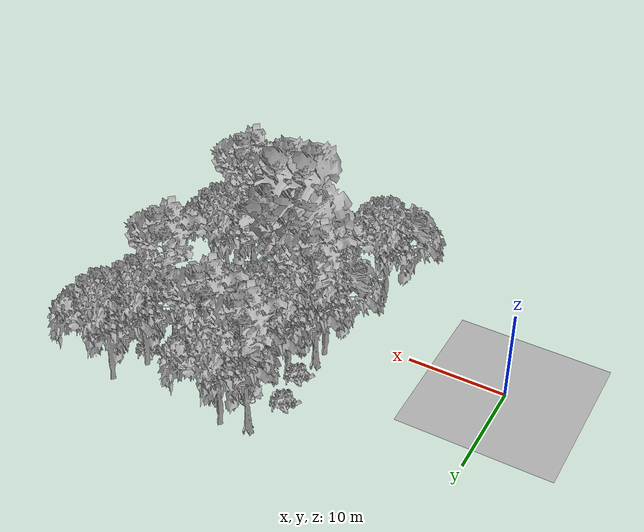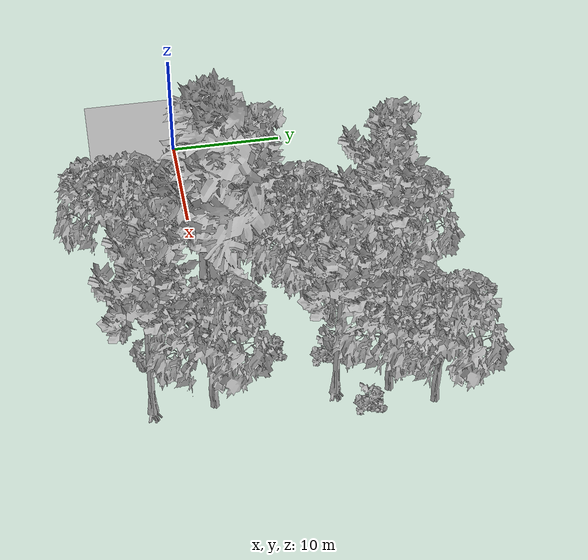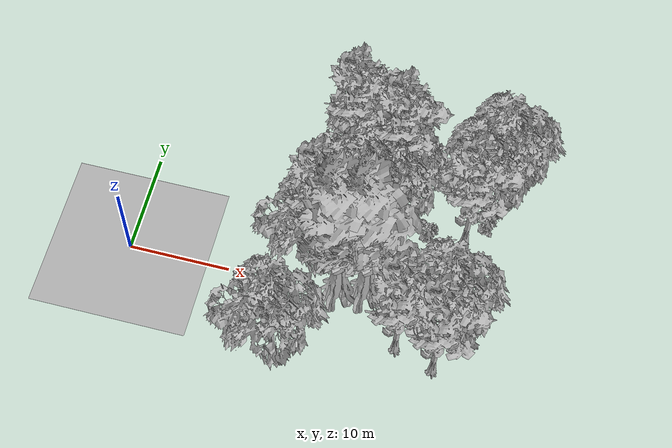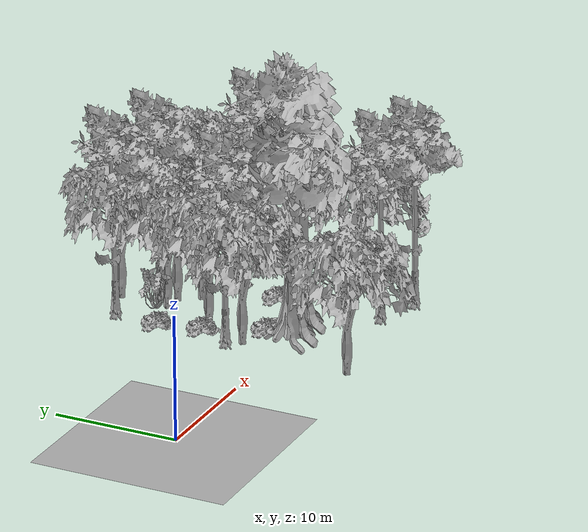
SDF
<sdf version="1.7">
 <world name="default">
  <model name="ground_plane">
   <static>1</static>
   <link name="link">
    <collision name="collision">
     <geometry><plane><normal>0 0 1</normal><size>70 70</size></plane></geometry>
     <surface><contact><ode><min_depth>0.01</min_depth><max_vel>0</max_vel></ode></contact></surface>
    </collision>
    <visual name="grass">
     <cast_shadows>0</cast_shadows>
     <geometry>
      <mesh>
       <scale>0.29000000000000004 0.29000000000000004 0.1</scale>
       <uri>file://grass_plane/meshes/grass_plane.dae</uri>
      </mesh>
     </geometry>
    </visual>
   </link>
  </model>
  <model name="Tree 3">
   <static>1</static>
   <pose>21.22080247000826 11.679986534153123 0 1.57079 -0 0</pose>
   <link name="link">
    <collision name="collision">
     <geometry><mesh><scale>5 5 5</scale><uri>model://tree_2/meshes/tree_2.obj</uri></mesh></geometry>
    </collision>
    <visual name="visual">
     <geometry><mesh><scale>5 5 5</scale><uri>model://tree_2/meshes/tree_2.obj</uri></mesh></geometry>
    </visual>
   </link>
  </model>
  <model name="Tree 24">
   <static>1</static>
   <pose>15.954363729011803 -6.459099030560662 0 1.57079 -0 0</pose>
   <link name="link">
    <collision name="collision">
     <geometry><mesh><scale>5 5 5</scale><uri>model://tree_2/meshes/tree_2.obj</uri></mesh></geometry>
    </collision>
    <visual name="visual">
     <geometry><mesh><scale>5 5 5</scale><uri>model://tree_2/meshes/tree_2.obj</uri></mesh></geometry>
    </visual>
   </link>
  </model>
  <model name="Tree 40">
   <static>1</static>
   <pose>33.71196952621489 16.018471205293842 0 1.57079 -0 0</pose>
   <link name="link">
    <collision name="collision">
     <geometry><mesh><scale>5 5 5</scale><uri>model://tree_2/meshes/tree_2.obj</uri></mesh></geometry>
    </collision>
    <visual name="visual">
     <geometry><mesh><scale>5 5 5</scale><uri>model://tree_2/meshes/tree_2.obj</uri></mesh></geometry>
    </visual>
   </link>
  </model>
  <model name="Tree 48">
   <static>1</static>
   <pose>22.867448975952293 11.61938349174897 0 1.57079 -0 0</pose>
   <link name="link">
    <collision name="collision">
     <geometry><mesh><scale>5 5 5</scale><uri>model://tree_2/meshes/tree_2.obj</uri></mesh></geometry>
    </collision>
    <visual name="visual">
     <geometry><mesh><scale>5 5 5</scale><uri>model://tree_2/meshes/tree_2.obj</uri></mesh></geometry>
    </visual>
   </link>
  </model>
  <model name="Tree 49">
   <static>1</static>
   <pose>23.402682131377226 0.9526612247854516 0 1.57079 -0 0</pose>
   <link name="link">
    <collision name="collision">
     <geometry><mesh><scale>5 5 5</scale><uri>model://tree_4/meshes/tree_4.obj</uri></mesh></geometry>
    </collision>
    <visual name="visual">
     <geometry><mesh><scale>5 5 5</scale><uri>model://tree_4/meshes/tree_4.obj</uri></mesh></geometry>
    </visual>
   </link>
  </model>
  <model name="Tree 50">
   <static>1</static>
   <pose>31.321863808368462 -5.433248681339759 0 1.57079 -0 0</pose>
   <link name="link">
    <collision name="collision">
     <geometry><mesh><scale>5 5 5</scale><uri>model://tree_9/meshes/tree_9.obj</uri></mesh></geometry>
    </collision>
    <visual name="visual">
     <geometry><mesh><scale>5 5 5</scale><uri>model://tree_9/meshes/tree_9.obj</uri></mesh></geometry>
    </visual>
   </link>
  </model>
  <model name="Tree 55">
   <static>1</static>
   <pose>20.808689133314694 0.43514609856021025 0 1.57079 -0 0</pose>
   <link name="link">
    <collision name="collision">
     <geometry><mesh><scale>5 5 5</scale><uri>model://tree_4/meshes/tree_4.obj</uri></mesh></geometry>
    </collision>
    <visual name="visual">
     <geometry><mesh><scale>5 5 5</scale><uri>model://tree_4/meshes/tree_4.obj</uri></mesh></geometry>
    </visual>
   </link>
  </model>
  <model name="Tree 64">
   <static>1</static>
   <pose>17.877005441744224 4.817520126394605 0 1.57079 -0 0</pose>
   <link name="link">
    <collision name="collision">
     <geometry><mesh><scale>5 5 5</scale><uri>model://tree_9/meshes/tree_9.obj</uri></mesh></geometry>
    </collision>
    <visual name="visual">
     <geometry><mesh><scale>5 5 5</scale><uri>model://tree_9/meshes/tree_9.obj</uri></mesh></geometry>
    </visual>
   </link>
  </model>
  <model name="Tree 87">
   <static>1</static>
   <pose>23.866056870728052 13.744548714664639 0 1.57079 -0 0</pose>
   <link name="link">
    <collision name="collision">
     <geometry><mesh><scale>5 5 5</scale><uri>model://tree_9/meshes/tree_9.obj</uri></mesh></geometry>
    </collision>
    <visual name="visual">
     <geometry><mesh><scale>5 5 5</scale><uri>model://tree_9/meshes/tree_9.obj</uri></mesh></geometry>
    </visual>
   </link>
  </model>
  <model name="Tree 110">
   <static>1</static>
   <pose>31.98746536358297 12.819603308874754 0 1.57079 -0 0</pose>
   <link name="link">
    <collision name="collision">
     <geometry><mesh><scale>5 5 5</scale><uri>model://tree_2/meshes/tree_2.obj</uri></mesh></geometry>
    </collision>
    <visual name="visual">
     <geometry><mesh><scale>5 5 5</scale><uri>model://tree_2/meshes/tree_2.obj</uri></mesh></geometry>
    </visual>
   </link>
  </model>
  <model name="Tree 113">
   <static>1</static>
   <pose>17.576932954955176 3.239378040665386 0 1.57079 -0 0</pose>
   <link name="link">
    <collision name="collision">
     <geometry><mesh><scale>5 5 5</scale><uri>model://tree_2/meshes/tree_2.obj</uri></mesh></geometry>
    </collision>
    <visual name="visual">
     <geometry><mesh><scale>5 5 5</scale><uri>model://tree_2/meshes/tree_2.obj</uri></mesh></geometry>
    </visual>
   </link>
  </model>
  <model name="Tree 137">
   <static>1</static>
   <pose>21.507749959172585 15.972624868648786 0 1.57079 -0 0</pose>
   <link name="link">
    <collision name="collision">
     <geometry><mesh><scale>5 5 5</scale><uri>model://tree_2/meshes/tree_2.obj</uri></mesh></geometry>
    </collision>
    <visual name="visual">
     <geometry><mesh><scale>5 5 5</scale><uri>model://tree_2/meshes/tree_2.obj</uri></mesh></geometry>
    </visual>
   </link>
  </model>
  <model name="Tree 139">
   <static>1</static>
   <pose>21.54882749262564 8.19223515064575 0 1.57079 -0 0</pose>
   <link name="link">
    <collision name="collision">
     <geometry><mesh><scale>5 5 5</scale><uri>model://tree_2/meshes/tree_2.obj</uri></mesh></geometry>
    </collision>
    <visual name="visual">
     <geometry><mesh><scale>5 5 5</scale><uri>model://tree_2/meshes/tree_2.obj</uri></mesh></geometry>
    </visual>
   </link>
  </model>
  <model name="Tree 158">
   <static>1</static>
   <pose>31.368071939903572 -0.7366629387835744 0 1.57079 -0 0</pose>
   <link name="link">
    <collision name="collision">
     <geometry><mesh><scale>5 5 5</scale><uri>model://tree_2/meshes/tree_2.obj</uri></mesh></geometry>
    </collision>
    <visual name="visual">
     <geometry><mesh><scale>5 5 5</scale><uri>model://tree_2/meshes/tree_2.obj</uri></mesh></geometry>
    </visual>
   </link>
  </model>
  <model name="Tree 166">
   <static>1</static>
   <pose>27.492864797008004 -4.162541726076867 0 1.57079 -0 0</pose>
   <link name="link">
    <collision name="collision">
     <geometry><mesh><scale>5 5 5</scale><uri>model://tree_9/meshes/tree_9.obj</uri></mesh></geometry>
    </collision>
    <visual name="visual">
     <geometry><mesh><scale>5 5 5</scale><uri>model://tree_9/meshes/tree_9.obj</uri></mesh></geometry>
    </visual>
   </link>
  </model>
  <model name="Tree 191">
   <static>1</static>
   <pose>24.00667430304643 10.03388455078229 0 1.57079 -0 0</pose>
   <link name="link">
    <collision name="collision">
     <geometry><mesh><scale>5 5 5</scale><uri>model://tree_2/meshes/tree_2.obj</uri></mesh></geometry>
    </collision>
    <visual name="visual">
     <geometry><mesh><scale>5 5 5</scale><uri>model://tree_2/meshes/tree_2.obj</uri></mesh></geometry>
    </visual>
   </link>
  </model>
  <model name="Tree 220">
   <static>1</static>
   <pose>19.110470939116908 15.19341309613263 0 1.57079 -0 0</pose>
   <link name="link">
    <collision name="collision">
     <geometry><mesh><scale>5 5 5</scale><uri>model://tree_9/meshes/tree_9.obj</uri></mesh></geometry>
    </collision>
    <visual name="visual">
     <geometry><mesh><scale>5 5 5</scale><uri>model://tree_9/meshes/tree_9.obj</uri></mesh></geometry>
    </visual>
   </link>
  </model>
  <model name="Tree 222">
   <static>1</static>
   <pose>19.522110044257268 7.143372396384706 0 1.57079 -0 0</pose>
   <link name="link">
    <collision name="collision">
     <geometry><mesh><scale>5 5 5</scale><uri>model://tree_2/meshes/tree_2.obj</uri></mesh></geometry>
    </collision>
    <visual name="visual">
     <geometry><mesh><scale>5 5 5</scale><uri>model://tree_2/meshes/tree_2.obj</uri></mesh></geometry>
    </visual>
   </link>
  </model>
  <model name="Tree 234">
   <static>1</static>
   <pose>31.674424797542144 8.676705768970116 0 1.57079 -0 0</pose>
   <link name="link">
    <collision name="collision">
     <geometry><mesh><scale>5 5 5</scale><uri>model://tree_9/meshes/tree_9.obj</uri></mesh></geometry>
    </collision>
    <visual name="visual">
     <geometry><mesh><scale>5 5 5</scale><uri>model://tree_9/meshes/tree_9.obj</uri></mesh></geometry>
    </visual>
   </link>
  </model>
  <model name="Bush 3">
   <static>1</static>
   <pose>27.626658779801218 8.761678427356742 0 1.57079 -0 0</pose>
   <link name="link">
    <collision name="collision">
     <geometry><mesh><scale>2 2 2</scale><uri>model://bush_2/meshes/bush_2.obj</uri></mesh></geometry>
    </collision>
    <visual name="visual">
     <geometry><mesh><scale>5 5 5</scale><uri>model://bush_2/meshes/bush_2.obj</uri></mesh></geometry>
    </visual>
   </link>
  </model>
  <model name="Bush 4">
   <static>1</static>
   <pose>33.063274897436244 11.067681045228689 0 1.57079 -0 0</pose>
   <link name="link">
    <collision name="collision">
     <geometry><mesh><scale>2 2 2</scale><uri>model://bush_2/meshes/bush_2.obj</uri></mesh></geometry>
    </collision>
    <visual name="visual">
     <geometry><mesh><scale>5 5 5</scale><uri>model://bush_2/meshes/bush_2.obj</uri></mesh></geometry>
    </visual>
   </link>
  </model>
  <model name="Bush 18">
   <static>1</static>
   <pose>18.43469045058967 7.125926232823808 0 1.57079 -0 0</pose>
   <link name="link">
    <collision name="collision">
     <geometry><mesh><scale>2 2 2</scale><uri>model://bush_2/meshes/bush_2.obj</uri></mesh></geometry>
    </collision>
    <visual name="visual">
     <geometry><mesh><scale>5 5 5</scale><uri>model://bush_2/meshes/bush_2.obj</uri></mesh></geometry>
    </visual>
   </link>
  </model>
  <model name="Bush 19">
   <static>1</static>
   <pose>20.945509007955764 12.484099303344202 0 1.57079 -0 0</pose>
   <link name="link">
    <collision name="collision">
     <geometry><mesh><scale>2 2 2</scale><uri>model://bush_4/meshes/bush_4.obj</uri></mesh></geometry>
    </collision>
    <visual name="visual">
     <geometry><mesh><scale>5 5 5</scale><uri>model://bush_4/meshes/bush_4.obj</uri></mesh></geometry>
    </visual>
   </link>
  </model>
  <model name="Bush 44">
   <static>1</static>
   <pose>26.5353363220675 4.4203041671197525 0 1.57079 -0 0</pose>
   <link name="link">
    <collision name="collision">
     <geometry><mesh><scale>2 2 2</scale><uri>model://bush_2/meshes/bush_2.obj</uri></mesh></geometry>
    </collision>
    <visual name="visual">
     <geometry><mesh><scale>5 5 5</scale><uri>model://bush_2/meshes/bush_2.obj</uri></mesh></geometry>
    </visual>
   </link>
  </model>
  <model name="Bush 47">
   <static>1</static>
   <pose>17.810913665570872 10.79825662146856 0 1.57079 -0 0</pose>
   <link name="link">
    <collision name="collision">
     <geometry><mesh><scale>2 2 2</scale><uri>model://bush_2/meshes/bush_2.obj</uri></mesh></geometry>
    </collision>
    <visual name="visual">
     <geometry><mesh><scale>5 5 5</scale><uri>model://bush_2/meshes/bush_2.obj</uri></mesh></geometry>
    </visual>
   </link>
  </model>
  <model name="Bush 50">
   <static>1</static>
   <pose>20.498667200253507 2.47566084495341 0 1.57079 -0 0</pose>
   <link name="link">
    <collision name="collision">
     <geometry><mesh><scale>2 2 2</scale><uri>model://bush_2/meshes/bush_2.obj</uri></mesh></geometry>
    </collision>
    <visual name="visual">
     <geometry><mesh><scale>5 5 5</scale><uri>model://bush_2/meshes/bush_2.obj</uri></mesh></geometry>
    </visual>
   </link>
  </model>
 </world>
</sdf>
